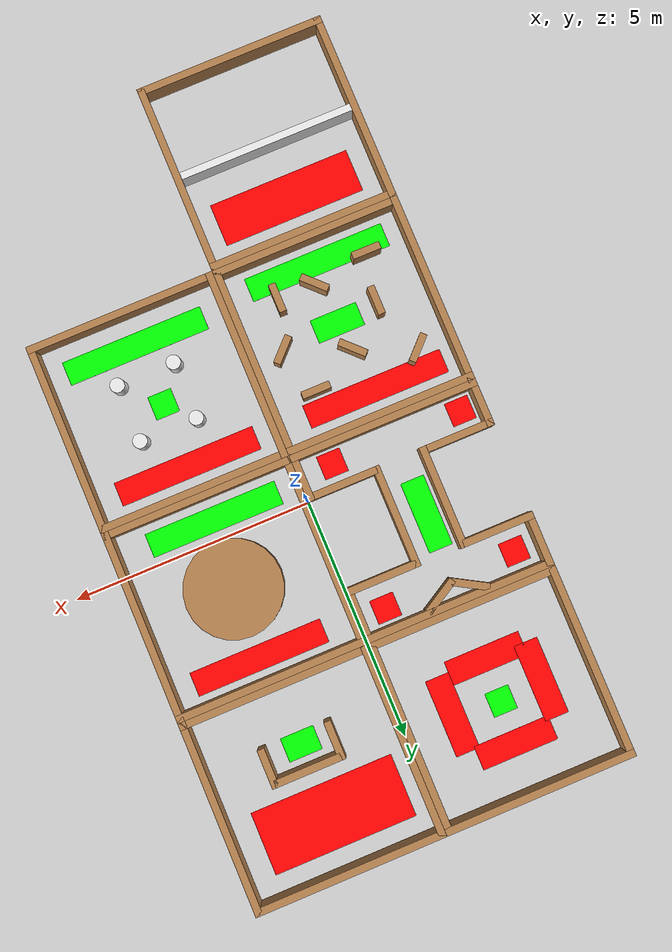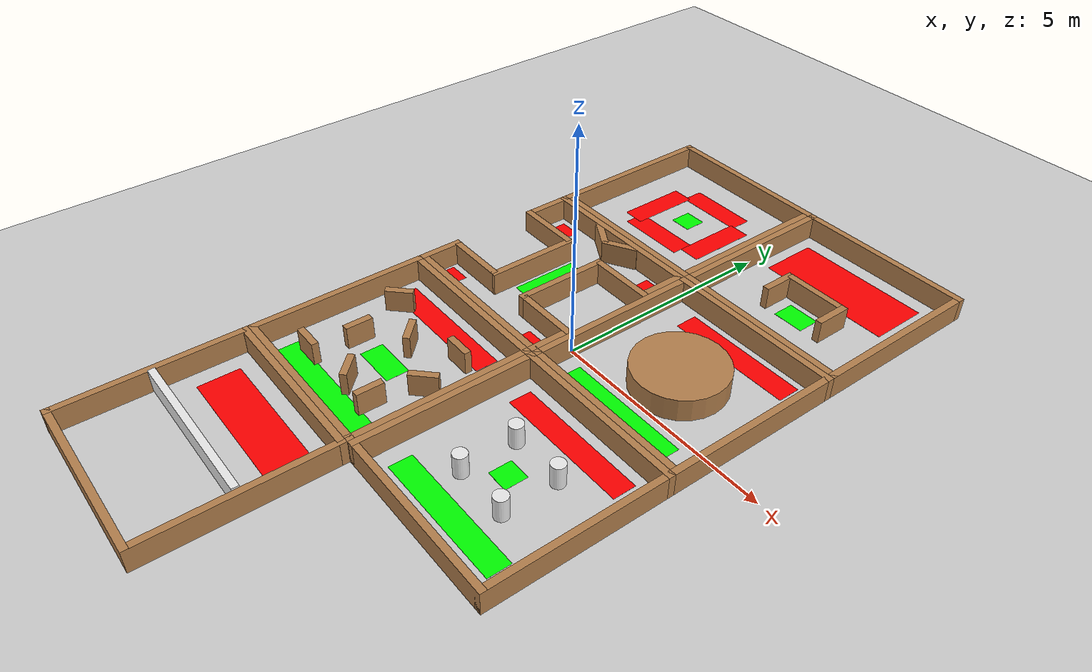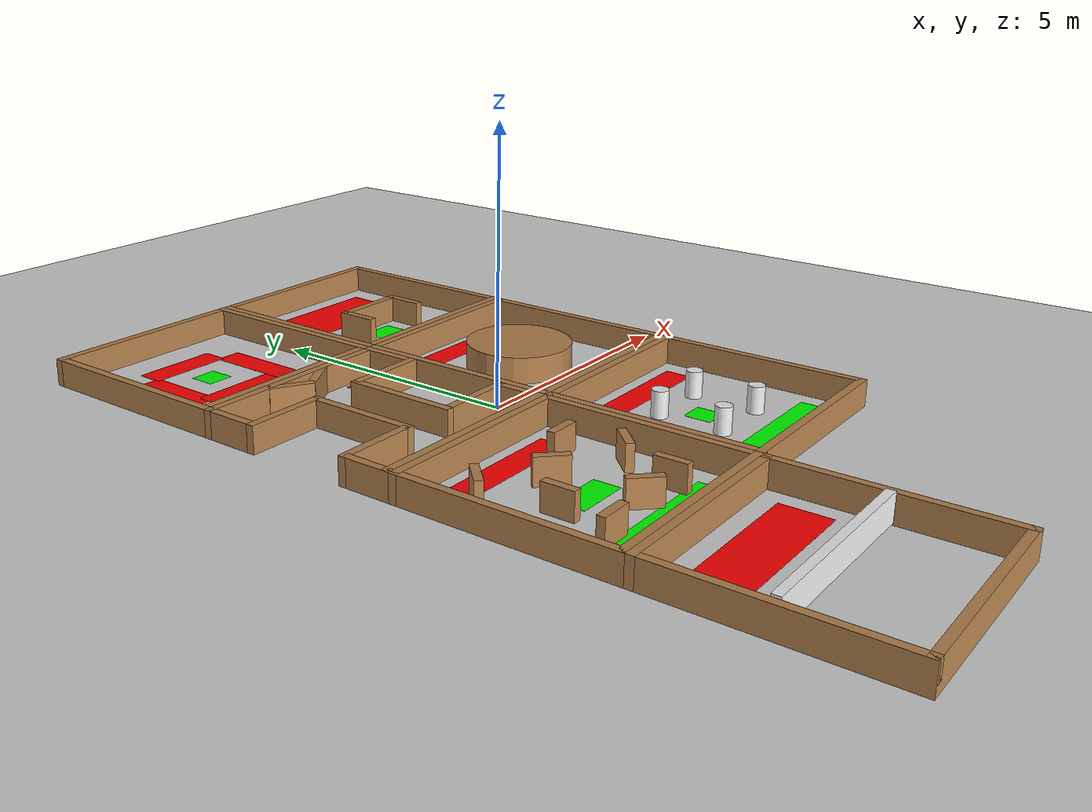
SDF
<sdf version="1.6">
 <world name="default">
  <light name="sun" type="directional">
   <pose>0 0 10 0 -0 0</pose>
   <diffuse>0.8 0.8 0.8 1</diffuse>
   <specular>0.1 0.1 0.1 1</specular>
   <attenuation>
    <range>1000</range>
    <constant>0.9</constant>
    <linear>0.01</linear>
    <quadratic>0.001</quadratic>
   </attenuation>
   <direction>-0.5 0.5 -1</direction>
  </light>
  <model name="ground_plane">
   <static>1</static>
   <link name="link">
    <collision name="collision">
     <geometry><plane><normal>0 0 1</normal><size>100 100</size></plane></geometry>
     <surface><friction><ode><mu>100</mu><mu2>50</mu2></ode></friction></surface>
    </collision>
    <visual name="visual">
     <cast_shadows>0</cast_shadows>
     <geometry><plane><normal>0 0 1</normal><size>100 100</size></plane></geometry>
     <material>
      <script><uri>file://media/materials/scripts/gazebo.material</uri><name>Gazebo/Grey</name></script>
     </material>
    </visual>
   </link>
  </model>
  <gravity>0 0 -9.8</gravity>
  <magnetic_field>6e-06 2.3e-05 -4.2e-05</magnetic_field>
  <atmosphere type="adiabatic"/>
  <physics name="default_physics" default="0" type="ode">
   <max_step_size>0.001</max_step_size>
   <real_time_factor>1</real_time_factor>
   <real_time_update_rate>1000</real_time_update_rate>
  </physics>
  <scene><ambient>0.4 0.4 0.4 1</ambient><background>0.7 0.7 0.7 1</background><shadows>1</shadows></scene>
  <spherical_coordinates>
   <surface_model>EARTH_WGS84</surface_model>
   <latitude_deg>0</latitude_deg>
   <longitude_deg>0</longitude_deg>
   <elevation>0</elevation>
   <heading_deg>0</heading_deg>
  </spherical_coordinates>
  <model name="empty_square">
   <pose>-2 5 0 0 -0 0</pose>
   <link name="Wall_0">
    <collision name="Wall_0_Collision">
     <geometry><box><size>4 0.15 0.5</size></box></geometry>
     <pose>0 0 0.25 0 -0 0</pose>
    </collision>
    <visual name="Wall_0_Visual">
     <pose>0 0 0.25 0 -0 0</pose>
     <geometry><box><size>4 0.15 0.5</size></box></geometry>
     <material>
      <script><uri>file://media/materials/scripts/gazebo.material</uri><name>Gazebo/Wood</name></script>
      <ambient>1 1 1 1</ambient>
     </material>
    </visual>
    <pose>0 1.925 0 0 -0 0</pose>
   </link>
   <link name="Wall_2">
    <collision name="Wall_2_Collision">
     <geometry><box><size>4 0.15 0.5</size></box></geometry>
     <pose>0 0 0.25 0 -0 0</pose>
    </collision>
    <visual name="Wall_2_Visual">
     <pose>0 0 0.25 0 -0 0</pose>
     <geometry><box><size>4 0.15 0.5</size></box></geometry>
     <material>
      <script><uri>file://media/materials/scripts/gazebo.material</uri><name>Gazebo/Wood</name></script>
      <ambient>1 1 1 1</ambient>
     </material>
    </visual>
    <pose>-1.925 0 0 0 0 -1.5708</pose>
   </link>
   <link name="Wall_3">
    <collision name="Wall_3_Collision">
     <geometry><box><size>4 0.15 0.5</size></box></geometry>
     <pose>0 0 0.25 0 -0 0</pose>
    </collision>
    <visual name="Wall_3_Visual">
     <pose>0 0 0.25 0 -0 0</pose>
     <geometry><box><size>4 0.15 0.5</size></box></geometry>
     <material>
      <script><uri>file://media/materials/scripts/gazebo.material</uri><name>Gazebo/Wood</name></script>
      <ambient>1 1 1 1</ambient>
     </material>
    </visual>
    <pose>0 -1.925 0 0 -0 0</pose>
   </link>
   <link name="Wall_4">
    <collision name="Wall_4_Collision">
     <geometry><box><size>4 0.15 0.5</size></box></geometry>
     <pose>0 0 0.25 0 -0 0</pose>
    </collision>
    <visual name="Wall_4_Visual">
     <pose>0 0 0.25 0 -0 0</pose>
     <geometry><box><size>4 0.15 0.5</size></box></geometry>
     <material>
      <script><uri>file://media/materials/scripts/gazebo.material</uri><name>Gazebo/Wood</name></script>
      <ambient>1 1 1 1</ambient>
     </material>
    </visual>
    <pose>1.925 0 0 0 -0 1.5708</pose>
   </link>
   <static>1</static>
  </model>
  <model name="initial_move_away">
   <pose>2 5 0 0 -0 0</pose>
   <link name="Wall_0">
    <collision name="Wall_0_Collision">
     <geometry><box><size>4 0.15 0.5</size></box></geometry>
     <pose>0 0 0.25 0 -0 0</pose>
    </collision>
    <visual name="Wall_0_Visual">
     <pose>0 0 0.25 0 -0 0</pose>
     <geometry><box><size>4 0.15 0.5</size></box></geometry>
     <material>
      <script><uri>file://media/materials/scripts/gazebo.material</uri><name>Gazebo/Wood</name></script>
      <ambient>1 1 1 1</ambient>
     </material>
    </visual>
    <pose>0 1.925 0 0 -0 0</pose>
   </link>
   <link name="Wall_2">
    <collision name="Wall_2_Collision">
     <geometry><box><size>4 0.15 0.5</size></box></geometry>
     <pose>0 0 0.25 0 -0 0</pose>
    </collision>
    <visual name="Wall_2_Visual">
     <pose>0 0 0.25 0 -0 0</pose>
     <geometry><box><size>4 0.15 0.5</size></box></geometry>
     <material>
      <script><uri>file://media/materials/scripts/gazebo.material</uri><name>Gazebo/Wood</name></script>
      <ambient>1 1 1 1</ambient>
     </material>
    </visual>
    <pose>-1.925 0 0 0 0 -1.5708</pose>
   </link>
   <link name="Wall_3">
    <collision name="Wall_3_Collision">
     <geometry><box><size>4 0.15 0.5</size></box></geometry>
     <pose>0 0 0.25 0 -0 0</pose>
    </collision>
    <visual name="Wall_3_Visual">
     <pose>0 0 0.25 0 -0 0</pose>
     <geometry><box><size>4 0.15 0.5</size></box></geometry>
     <material>
      <script><uri>file://media/materials/scripts/gazebo.material</uri><name>Gazebo/Wood</name></script>
      <ambient>1 1 1 1</ambient>
     </material>
    </visual>
    <pose>0 -1.925 0 0 -0 0</pose>
   </link>
   <link name="Wall_4">
    <collision name="Wall_4_Collision">
     <geometry><box><size>4 0.15 0.5</size></box></geometry>
     <pose>0 0 0.25 0 -0 0</pose>
    </collision>
    <visual name="Wall_4_Visual">
     <pose>0 0 0.25 0 -0 0</pose>
     <geometry><box><size>4 0.15 0.5</size></box></geometry>
     <material>
      <script><uri>file://media/materials/scripts/gazebo.material</uri><name>Gazebo/Wood</name></script>
      <ambient>1 1 1 1</ambient>
     </material>
    </visual>
    <pose>1.925 0 0 0 -0 1.5708</pose>
   </link>
   <link name="Wall_5">
    <collision name="Wall_5_Collision">
     <geometry><box><size>1.4 0.15 0.5</size></box></geometry>
     <pose>0 0 0.25 0 -0 0</pose>
    </collision>
    <visual name="Wall_5_Visual">
     <pose>0 0 0.25 0 -0 0</pose>
     <geometry><box><size>1.4 0.15 0.5</size></box></geometry>
     <material>
      <script><uri>file://media/materials/scripts/gazebo.material</uri><name>Gazebo/Wood</name></script>
      <ambient>1 1 1 1</ambient>
     </material>
    </visual>
    <pose>0 -0.2 0 0 -0 0</pose>
   </link>
   <link name="Wall_6">
    <collision name="Wall_6_Collision">
     <geometry><box><size>0.8 0.15 0.5</size></box></geometry>
     <pose>0 0 0.25 0 -0 0</pose>
    </collision>
    <visual name="Wall_6_Visual">
     <pose>0 0 0.25 0 -0 0</pose>
     <geometry><box><size>0.8 0.15 0.5</size></box></geometry>
     <material>
      <script><uri>file://media/materials/scripts/gazebo.material</uri><name>Gazebo/Wood</name></script>
      <ambient>1 1 1 1</ambient>
     </material>
    </visual>
    <pose>0.7 -0.525 0 0 -0 1.5708</pose>
   </link>
   <link name="Wall_7">
    <collision name="Wall_7_Collision">
     <geometry><box><size>0.8 0.15 0.5</size></box></geometry>
     <pose>0 0 0.25 0 -0 0</pose>
    </collision>
    <visual name="Wall_7_Visual">
     <pose>0 0 0.25 0 -0 0</pose>
     <geometry><box><size>0.8 0.15 0.5</size></box></geometry>
     <material>
      <script><uri>file://media/materials/scripts/gazebo.material</uri><name>Gazebo/Wood</name></script>
      <ambient>1 1 1 1</ambient>
     </material>
    </visual>
    <pose>-0.7 -0.525 0 0 -0 1.5708</pose>
   </link>
   <static>1</static>
  </model>
  <model name="left_right_turn">
   <pose>-2 1 0 0 -0 0</pose>
   <link name="Wall_0">
    <collision name="Wall_0_Collision">
     <geometry><box><size>4 0.15 0.5</size></box></geometry>
     <pose>0 0 0.25 0 -0 0</pose>
    </collision>
    <visual name="Wall_0_Visual">
     <pose>0 0 0.25 0 -0 0</pose>
     <geometry><box><size>4 0.15 0.5</size></box></geometry>
     <material>
      <script><uri>file://media/materials/scripts/gazebo.material</uri><name>Gazebo/Wood</name></script>
      <ambient>1 1 1 1</ambient>
     </material>
    </visual>
    <pose>0 1.925 0 0 -0 0</pose>
   </link>
   <link name="Wall_2">
    <collision name="Wall_2_Collision">
     <geometry><box><size>1 0.15 0.5</size></box></geometry>
     <pose>0 0 0.25 0 -0 0</pose>
    </collision>
    <visual name="Wall_2_Visual">
     <pose>0 0 0.25 0 -0 0</pose>
     <geometry><box><size>1 0.15 0.5</size></box></geometry>
     <material>
      <script><uri>file://media/materials/scripts/gazebo.material</uri><name>Gazebo/Wood</name></script>
      <ambient>1 1 1 1</ambient>
     </material>
    </visual>
    <pose>-1.925 1.5 0 0 0 -1.5708</pose>
   </link>
   <link name="Wall_3">
    <collision name="Wall_3_Collision">
     <geometry><box><size>4 0.15 0.5</size></box></geometry>
     <pose>0 0 0.25 0 -0 0</pose>
    </collision>
    <visual name="Wall_3_Visual">
     <pose>0 0 0.25 0 -0 0</pose>
     <geometry><box><size>4 0.15 0.5</size></box></geometry>
     <material>
      <script><uri>file://media/materials/scripts/gazebo.material</uri><name>Gazebo/Wood</name></script>
      <ambient>1 1 1 1</ambient>
     </material>
    </visual>
    <pose>0 -1.925 0 0 -0 0</pose>
   </link>
   <link name="Wall_4">
    <collision name="Wall_4_Collision">
     <geometry><box><size>1 0.15 0.5</size></box></geometry>
     <pose>0 0 0.25 0 -0 0</pose>
    </collision>
    <visual name="Wall_4_Visual">
     <pose>0 0 0.25 0 -0 0</pose>
     <geometry><box><size>1 0.15 0.5</size></box></geometry>
     <material>
      <script><uri>file://media/materials/scripts/gazebo.material</uri><name>Gazebo/Wood</name></script>
      <ambient>1 1 1 1</ambient>
     </material>
    </visual>
    <pose>1.925 1.5 0 0 -0 1.5708</pose>
   </link>
   <link name="Wall_5">
    <collision name="Wall_5_Collision">
     <geometry><box><size>1 0.15 0.5</size></box></geometry>
     <pose>0 0 0.25 0 -0 0</pose>
    </collision>
    <visual name="Wall_5_Visual">
     <pose>0 0 0.25 0 -0 0</pose>
     <geometry><box><size>1 0.15 0.5</size></box></geometry>
     <material>
      <script><uri>file://media/materials/scripts/gazebo.material</uri><name>Gazebo/Wood</name></script>
      <ambient>1 1 1 1</ambient>
     </material>
    </visual>
    <pose>-1.925 -1.5 0 0 0 -1.5708</pose>
   </link>
   <link name="Wall_6">
    <collision name="Wall_6_Collision">
     <geometry><box><size>1 0.15 0.5</size></box></geometry>
     <pose>0 0 0.25 0 -0 0</pose>
    </collision>
    <visual name="Wall_6_Visual">
     <pose>0 0 0.25 0 -0 0</pose>
     <geometry><box><size>1 0.15 0.5</size></box></geometry>
     <material>
      <script><uri>file://media/materials/scripts/gazebo.material</uri><name>Gazebo/Wood</name></script>
      <ambient>1 1 1 1</ambient>
     </material>
    </visual>
    <pose>1.925 -1.5 0 0 -0 1.5708</pose>
   </link>
   <link name="Wall_7">
    <collision name="Wall_7_Collision">
     <geometry><box><size>1.5 0.15 0.5</size></box></geometry>
     <pose>0 0 0.25 0 -0 0</pose>
    </collision>
    <visual name="Wall_7_Visual">
     <pose>0 0 0.25 0 -0 0</pose>
     <geometry><box><size>1.5 0.15 0.5</size></box></geometry>
     <material>
      <script><uri>file://media/materials/scripts/gazebo.material</uri><name>Gazebo/Wood</name></script>
      <ambient>1 1 1 1</ambient>
     </material>
    </visual>
    <pose>-1.25 0.925 0 0 -0 0</pose>
   </link>
   <link name="Wall_8">
    <collision name="Wall_8_Collision">
     <geometry><box><size>1.5 0.15 0.5</size></box></geometry>
     <pose>0 0 0.25 0 -0 0</pose>
    </collision>
    <visual name="Wall_8_Visual">
     <pose>0 0 0.25 0 -0 0</pose>
     <geometry><box><size>1.5 0.15 0.5</size></box></geometry>
     <material>
      <script><uri>file://media/materials/scripts/gazebo.material</uri><name>Gazebo/Wood</name></script>
      <ambient>1 1 1 1</ambient>
     </material>
    </visual>
    <pose>1.25 0.925 0 0 -0 0</pose>
   </link>
   <link name="Wall_9">
    <collision name="Wall_9_Collision">
     <geometry><box><size>1.5 0.15 0.5</size></box></geometry>
     <pose>0 0 0.25 0 -0 0</pose>
    </collision>
    <visual name="Wall_9_Visual">
     <pose>0 0 0.25 0 -0 0</pose>
     <geometry><box><size>1.5 0.15 0.5</size></box></geometry>
     <material>
      <script><uri>file://media/materials/scripts/gazebo.material</uri><name>Gazebo/Wood</name></script>
      <ambient>1 1 1 1</ambient>
     </material>
    </visual>
    <pose>-1.25 -1.075 0 0 -0 0</pose>
   </link>
   <link name="Wall_10">
    <collision name="Wall_10_Collision">
     <geometry><box><size>1.5 0.15 0.5</size></box></geometry>
     <pose>0 0 0.25 0 -0 0</pose>
    </collision>
    <visual name="Wall_10_Visual">
     <pose>0 0 0.25 0 -0 0</pose>
     <geometry><box><size>1.5 0.15 0.5</size></box></geometry>
     <material>
      <script><uri>file://media/materials/scripts/gazebo.material</uri><name>Gazebo/Wood</name></script>
      <ambient>1 1 1 1</ambient>
     </material>
    </visual>
    <pose>1.25 -1.075 0 0 -0 0</pose>
   </link>
   <link name="Wall_11">
    <collision name="Wall_11_Collision">
     <geometry><box><size>2.15 0.15 0.5</size></box></geometry>
     <pose>0 0 0.25 0 -0 0</pose>
    </collision>
    <visual name="Wall_11_Visual">
     <pose>0 0 0.25 0 -0 0</pose>
     <geometry><box><size>2.15 0.15 0.5</size></box></geometry>
     <material>
      <script><uri>file://media/materials/scripts/gazebo.material</uri><name>Gazebo/Wood</name></script>
      <ambient>1 1 1 1</ambient>
     </material>
    </visual>
    <pose>-0.5 -0.075 0 0 0 -1.5708</pose>
   </link>
   <link name="Wall_12">
    <collision name="Wall_12_Collision">
     <geometry><box><size>2.15 0.15 0.5</size></box></geometry>
     <pose>0 0 0.25 0 -0 0</pose>
    </collision>
    <visual name="Wall_12_Visual">
     <pose>0 0 0.25 0 -0 0</pose>
     <geometry><box><size>2.15 0.15 0.5</size></box></geometry>
     <material>
      <script><uri>file://media/materials/scripts/gazebo.material</uri><name>Gazebo/Wood</name></script>
      <ambient>1 1 1 1</ambient>
     </material>
    </visual>
    <pose>0.5 -0.075 0 0 0 -1.5708</pose>
   </link>
   <link name="Wall_13">
    <collision name="Wall_13_Collision">
     <geometry><box><size>0.8 0.15 0.5</size></box></geometry>
     <pose>0 0 0.25 0 -0 0</pose>
    </collision>
    <visual name="Wall_13_Visual">
     <pose>0 0 0.25 0 -0 0</pose>
     <geometry><box><size>0.8 0.15 0.5</size></box></geometry>
     <material>
      <script><uri>file://media/materials/scripts/gazebo.material</uri><name>Gazebo/Wood</name></script>
      <ambient>1 1 1 1</ambient>
     </material>
    </visual>
    <pose>0.31 1.7 0 0 -0 0.5236</pose>
   </link>
   <link name="Wall_14">
    <collision name="Wall_14_Collision">
     <geometry><box><size>0.8 0.15 0.5</size></box></geometry>
     <pose>0 0 0.25 0 -0 0</pose>
    </collision>
    <visual name="Wall_14_Visual">
     <pose>0 0 0.25 0 -0 0</pose>
     <geometry><box><size>0.8 0.15 0.5</size></box></geometry>
     <material>
      <script><uri>file://media/materials/scripts/gazebo.material</uri><name>Gazebo/Wood</name></script>
      <ambient>1 1 1 1</ambient>
     </material>
    </visual>
    <pose>-0.31 1.7 0 0 -0 2.6179</pose>
   </link>
   <static>1</static>
  </model>
  <model name="moving_obstacles">
   <pose>2 -3 0 0 -0 0</pose>
   <link name="Wall_0">
    <collision name="Wall_0_Collision">
     <geometry><box><size>4 0.15 0.5</size></box></geometry>
     <pose>0 0 0.25 0 -0 0</pose>
    </collision>
    <visual name="Wall_0_Visual">
     <pose>0 0 0.25 0 -0 0</pose>
     <geometry><box><size>4 0.15 0.5</size></box></geometry>
     <material>
      <script><uri>file://media/materials/scripts/gazebo.material</uri><name>Gazebo/Wood</name></script>
      <ambient>1 1 1 1</ambient>
     </material>
    </visual>
    <pose>0 1.925 0 0 -0 0</pose>
   </link>
   <link name="Wall_2">
    <collision name="Wall_2_Collision">
     <geometry><box><size>4 0.15 0.5</size></box></geometry>
     <pose>0 0 0.25 0 -0 0</pose>
    </collision>
    <visual name="Wall_2_Visual">
     <pose>0 0 0.25 0 -0 0</pose>
     <geometry><box><size>4 0.15 0.5</size></box></geometry>
     <material>
      <script><uri>file://media/materials/scripts/gazebo.material</uri><name>Gazebo/Wood</name></script>
      <ambient>1 1 1 1</ambient>
     </material>
    </visual>
    <pose>-1.925 0 0 0 0 -1.5708</pose>
   </link>
   <link name="Wall_3">
    <collision name="Wall_3_Collision">
     <geometry><box><size>4 0.15 0.5</size></box></geometry>
     <pose>0 0 0.25 0 -0 0</pose>
    </collision>
    <visual name="Wall_3_Visual">
     <pose>0 0 0.25 0 -0 0</pose>
     <geometry><box><size>4 0.15 0.5</size></box></geometry>
     <material>
      <script><uri>file://media/materials/scripts/gazebo.material</uri><name>Gazebo/Wood</name></script>
      <ambient>1 1 1 1</ambient>
     </material>
    </visual>
    <pose>0 -1.925 0 0 -0 0</pose>
   </link>
   <link name="Wall_4">
    <collision name="Wall_4_Collision">
     <geometry><box><size>4 0.15 0.5</size></box></geometry>
     <pose>0 0 0.25 0 -0 0</pose>
    </collision>
    <visual name="Wall_4_Visual">
     <pose>0 0 0.25 0 -0 0</pose>
     <geometry><box><size>4 0.15 0.5</size></box></geometry>
     <material>
      <script><uri>file://media/materials/scripts/gazebo.material</uri><name>Gazebo/Wood</name></script>
      <ambient>1 1 1 1</ambient>
     </material>
    </visual>
    <pose>1.925 0 0 0 -0 1.5708</pose>
   </link>
   <static>1</static>
  </model>
  <model name="moving_obstacles_round">
   <pose>2 -3 0 0 1e-06 0</pose>
   <link name="obstacle">
    <collision name="obstacle_1">
     <pose>-0.6 -0.6 0.25 0 -0 0</pose>
     <geometry><cylinder><radius>0.15</radius><length>0.5</length></cylinder></geometry>
    </collision>
    <visual name="obstacle_1">
     <pose>-0.6 -0.6 0.25 0 -0 0</pose>
     <geometry><cylinder><radius>0.15</radius><length>0.5</length></cylinder></geometry>
     <material>
      <script><uri>file://media/materials/scripts/gazebo.material</uri><name>Gazebo/White</name></script>
     </material>
    </visual>
    <collision name="obstacle_2">
     <pose>-0.6 0.6 0.25 0 -0 0</pose>
     <geometry><cylinder><radius>0.15</radius><length>0.5</length></cylinder></geometry>
    </collision>
    <visual name="obstacle_2">
     <pose>-0.6 0.6 0.25 0 -0 0</pose>
     <geometry><cylinder><radius>0.15</radius><length>0.5</length></cylinder></geometry>
     <material>
      <script><uri>file://media/materials/scripts/gazebo.material</uri><name>Gazebo/White</name></script>
     </material>
    </visual>
    <collision name="obstacle_3">
     <pose>0.6 -0.6 0.25 0 -0 0</pose>
     <geometry><cylinder><radius>0.15</radius><length>0.5</length></cylinder></geometry>
    </collision>
    <visual name="obstacle_3">
     <pose>0.6 -0.6 0.25 0 -0 0</pose>
     <geometry><cylinder><radius>0.15</radius><length>0.5</length></cylinder></geometry>
     <material>
      <script><uri>file://media/materials/scripts/gazebo.material</uri><name>Gazebo/White</name></script>
     </material>
    </visual>
    <collision name="obstacle_4">
     <pose>0.6 0.6 0.25 0 -0 0</pose>
     <geometry><cylinder><radius>0.15</radius><length>0.5</length></cylinder></geometry>
    </collision>
    <visual name="obstacle_4">
     <pose>0.6 0.6 0.25 0 -0 0</pose>
     <geometry><cylinder><radius>0.15</radius><length>0.5</length></cylinder></geometry>
     <material>
      <script><uri>file://media/materials/scripts/gazebo.material</uri><name>Gazebo/White</name></script>
     </material>
    </visual>
    <inertial>
     <inertia><ixx>1</ixx><ixy>0</ixy><ixz>0</ixz><iyy>1</iyy><iyz>0</iyz><izz>1</izz></inertia>
     <mass>1</mass>
    </inertial>
   </link>
  </model>
  <model name="gate_env">
   <pose>-2 -7 0 0 -0 0</pose>
   <link name="Wall_0">
    <collision name="Wall_0_Collision">
     <geometry><box><size>4 0.15 0.5</size></box></geometry>
     <pose>0 0 0.25 0 -0 0</pose>
    </collision>
    <visual name="Wall_0_Visual">
     <pose>0 0 0.25 0 -0 0</pose>
     <geometry><box><size>4 0.15 0.5</size></box></geometry>
     <material>
      <script><uri>file://media/materials/scripts/gazebo.material</uri><name>Gazebo/Wood</name></script>
      <ambient>1 1 1 1</ambient>
     </material>
    </visual>
    <pose>0 1.925 0 0 -0 0</pose>
   </link>
   <link name="Wall_2">
    <collision name="Wall_2_Collision">
     <geometry><box><size>4 0.15 0.5</size></box></geometry>
     <pose>0 0 0.25 0 -0 0</pose>
    </collision>
    <visual name="Wall_2_Visual">
     <pose>0 0 0.25 0 -0 0</pose>
     <geometry><box><size>4 0.15 0.5</size></box></geometry>
     <material>
      <script><uri>file://media/materials/scripts/gazebo.material</uri><name>Gazebo/Wood</name></script>
      <ambient>1 1 1 1</ambient>
     </material>
    </visual>
    <pose>-1.925 0 0 0 0 -1.5708</pose>
   </link>
   <link name="Wall_3">
    <collision name="Wall_3_Collision">
     <geometry><box><size>4 0.15 0.5</size></box></geometry>
     <pose>0 0 0.25 0 -0 0</pose>
    </collision>
    <visual name="Wall_3_Visual">
     <pose>0 0 0.25 0 -0 0</pose>
     <geometry><box><size>4 0.15 0.5</size></box></geometry>
     <material>
      <script><uri>file://media/materials/scripts/gazebo.material</uri><name>Gazebo/Wood</name></script>
      <ambient>1 1 1 1</ambient>
     </material>
    </visual>
    <pose>0 -1.925 0 0 -0 0</pose>
   </link>
   <link name="Wall_4">
    <collision name="Wall_4_Collision">
     <geometry><box><size>4 0.15 0.5</size></box></geometry>
     <pose>0 0 0.25 0 -0 0</pose>
    </collision>
    <visual name="Wall_4_Visual">
     <pose>0 0 0.25 0 -0 0</pose>
     <geometry><box><size>4 0.15 0.5</size></box></geometry>
     <material>
      <script><uri>file://media/materials/scripts/gazebo.material</uri><name>Gazebo/Wood</name></script>
      <ambient>1 1 1 1</ambient>
     </material>
    </visual>
    <pose>1.925 0 0 0 -0 1.5708</pose>
   </link>
   <static>1</static>
  </model>
  <model name="gate_moving">
   <pose>-2 -7.00196 0.28665 0.007827 -9e-06 0</pose>
   <link name="gate_1">
    <collision name="gate_1"><geometry><box><size>3.69 0.15 0.5</size></box></geometry></collision>
    <visual name="gate_1">
     <geometry><box><size>3.69 0.15 0.5</size></box></geometry>
     <material>
      <script><uri>file://media/materials/scripts/gazebo.material</uri><name>Gazebo/White</name></script>
     </material>
    </visual>
    <gravity>0</gravity>
    <inertial>
     <inertia><ixx>1</ixx><ixy>0</ixy><ixz>0</ixz><iyy>1</iyy><iyz>0</iyz><izz>1</izz></inertia>
     <mass>1</mass>
    </inertial>
   </link>
  </model>
  <model name="round_obstacle">
   <pose>2 1 0 0 -0 0</pose>
   <link name="Wall_0">
    <collision name="Wall_0_Collision">
     <geometry><box><size>4 0.15 0.5</size></box></geometry>
     <pose>0 0 0.25 0 -0 0</pose>
    </collision>
    <visual name="Wall_0_Visual">
     <pose>0 0 0.25 0 -0 0</pose>
     <geometry><box><size>4 0.15 0.5</size></box></geometry>
     <material>
      <script><uri>file://media/materials/scripts/gazebo.material</uri><name>Gazebo/Wood</name></script>
      <ambient>1 1 1 1</ambient>
     </material>
    </visual>
    <pose>0 1.925 0 0 -0 0</pose>
   </link>
   <link name="Wall_2">
    <collision name="Wall_2_Collision">
     <geometry><box><size>4 0.15 0.5</size></box></geometry>
     <pose>0 0 0.25 0 -0 0</pose>
    </collision>
    <visual name="Wall_2_Visual">
     <pose>0 0 0.25 0 -0 0</pose>
     <geometry><box><size>4 0.15 0.5</size></box></geometry>
     <material>
      <script><uri>file://media/materials/scripts/gazebo.material</uri><name>Gazebo/Wood</name></script>
      <ambient>1 1 1 1</ambient>
     </material>
    </visual>
    <pose>-1.925 0 0 0 0 -1.5708</pose>
   </link>
   <link name="Wall_3">
    <collision name="Wall_3_Collision">
     <geometry><box><size>4 0.15 0.5</size></box></geometry>
     <pose>0 0 0.25 0 -0 0</pose>
    </collision>
    <visual name="Wall_3_Visual">
     <pose>0 0 0.25 0 -0 0</pose>
     <geometry><box><size>4 0.15 0.5</size></box></geometry>
     <material>
      <script><uri>file://media/materials/scripts/gazebo.material</uri><name>Gazebo/Wood</name></script>
      <ambient>1 1 1 1</ambient>
     </material>
    </visual>
    <pose>0 -1.925 0 0 -0 0</pose>
   </link>
   <link name="Wall_4">
    <collision name="Wall_4_Collision">
     <geometry><box><size>4 0.15 0.5</size></box></geometry>
     <pose>0 0 0.25 0 -0 0</pose>
    </collision>
    <visual name="Wall_4_Visual">
     <pose>0 0 0.25 0 -0 0</pose>
     <geometry><box><size>4 0.15 0.5</size></box></geometry>
     <material>
      <script><uri>file://media/materials/scripts/gazebo.material</uri><name>Gazebo/Wood</name></script>
      <ambient>1 1 1 1</ambient>
     </material>
    </visual>
    <pose>1.925 0 0 0 -0 1.5708</pose>
   </link>
   <link name="obstacle">
    <collision name="obstacle_Collision">
     <geometry><cylinder><radius>1</radius><length>0.5</length></cylinder></geometry>
     <pose>0 0 0.25 0 -0 0</pose>
    </collision>
    <visual name="obstacle_Visual">
     <pose>0 0 0.25 0 -0 0</pose>
     <geometry><cylinder><radius>1</radius><length>0.5</length></cylinder></geometry>
     <material>
      <script><uri>file://media/materials/scripts/gazebo.material</uri><name>Gazebo/Wood</name></script>
      <ambient>1 1 1 1</ambient>
     </material>
    </visual>
    <pose>0 0 0 0 -0 1.5708</pose>
   </link>
   <static>1</static>
  </model>
  <model name="static_obstacles">
   <pose>-2 -3 0 0 -0 0</pose>
   <link name="Wall_0">
    <collision name="Wall_0_Collision">
     <geometry><box><size>4 0.15 0.5</size></box></geometry>
     <pose>0 0 0.25 0 -0 0</pose>
    </collision>
    <visual name="Wall_0_Visual">
     <pose>0 0 0.25 0 -0 0</pose>
     <geometry><box><size>4 0.15 0.5</size></box></geometry>
     <material>
      <script><uri>file://media/materials/scripts/gazebo.material</uri><name>Gazebo/Wood</name></script>
      <ambient>1 1 1 1</ambient>
     </material>
    </visual>
    <pose>0 1.925 0 0 -0 0</pose>
   </link>
   <link name="Wall_2">
    <collision name="Wall_2_Collision">
     <geometry><box><size>4 0.15 0.5</size></box></geometry>
     <pose>0 0 0.25 0 -0 0</pose>
    </collision>
    <visual name="Wall_2_Visual">
     <pose>0 0 0.25 0 -0 0</pose>
     <geometry><box><size>4 0.15 0.5</size></box></geometry>
     <material>
      <script><uri>file://media/materials/scripts/gazebo.material</uri><name>Gazebo/Wood</name></script>
      <ambient>1 1 1 1</ambient>
     </material>
    </visual>
    <pose>-1.925 0 0 0 0 -1.5708</pose>
   </link>
   <link name="Wall_3">
    <collision name="Wall_3_Collision">
     <geometry><box><size>4 0.15 0.5</size></box></geometry>
     <pose>0 0 0.25 0 -0 0</pose>
    </collision>
    <visual name="Wall_3_Visual">
     <pose>0 0 0.25 0 -0 0</pose>
     <geometry><box><size>4 0.15 0.5</size></box></geometry>
     <material>
      <script><uri>file://media/materials/scripts/gazebo.material</uri><name>Gazebo/Wood</name></script>
      <ambient>1 1 1 1</ambient>
     </material>
    </visual>
    <pose>0 -1.925 0 0 -0 0</pose>
   </link>
   <link name="Wall_4">
    <collision name="Wall_4_Collision">
     <geometry><box><size>4 0.15 0.5</size></box></geometry>
     <pose>0 0 0.25 0 -0 0</pose>
    </collision>
    <visual name="Wall_4_Visual">
     <pose>0 0 0.25 0 -0 0</pose>
     <geometry><box><size>4 0.15 0.5</size></box></geometry>
     <material>
      <script><uri>file://media/materials/scripts/gazebo.material</uri><name>Gazebo/Wood</name></script>
      <ambient>1 1 1 1</ambient>
     </material>
    </visual>
    <pose>1.925 0 0 0 -0 1.5708</pose>
   </link>
   <link name="obstacle_1">
    <collision name="obstacle_1_Collision">
     <geometry><box><size>0.6 0.15 0.5</size></box></geometry>
     <pose>0 0 0.25 0 -0 0.785</pose>
    </collision>
    <visual name="obstacle_1_Visual">
     <pose>0 0 0.25 0 -0 0.785</pose>
     <geometry><box><size>0.6 0.15 0.5</size></box></geometry>
     <material>
      <script><uri>file://media/materials/scripts/gazebo.material</uri><name>Gazebo/Wood</name></script>
      <ambient>1 1 1 1</ambient>
     </material>
    </visual>
    <pose>0 0.5 0 0 -0 1.5708</pose>
   </link>
   <link name="obstacle_2">
    <collision name="obstacle_2_Collision">
     <geometry><box><size>0.6 0.15 0.5</size></box></geometry>
     <pose>0 0 0.25 0 0 -0.785</pose>
    </collision>
    <visual name="obstacle_2_Visual">
     <pose>0 0 0.25 0 0 -0.785</pose>
     <geometry><box><size>0.6 0.15 0.5</size></box></geometry>
     <material>
      <script><uri>file://media/materials/scripts/gazebo.material</uri><name>Gazebo/Wood</name></script>
      <ambient>1 1 1 1</ambient>
     </material>
    </visual>
    <pose>-1.2 1 0 0 -0 1.5708</pose>
   </link>
   <link name="obstacle_3">
    <collision name="obstacle_3_Collision">
     <geometry><box><size>0.6 0.15 0.5</size></box></geometry>
     <pose>0 0 0.25 0 -0 0</pose>
    </collision>
    <visual name="obstacle_3_Visual">
     <pose>0 0 0.25 0 -0 0</pose>
     <geometry><box><size>0.6 0.15 0.5</size></box></geometry>
     <material>
      <script><uri>file://media/materials/scripts/gazebo.material</uri><name>Gazebo/Wood</name></script>
      <ambient>1 1 1 1</ambient>
     </material>
    </visual>
    <pose>-0.8 -0.2 0 0 -0 1.5708</pose>
   </link>
   <link name="obstacle_4">
    <collision name="obstacle_4_Collision">
     <geometry><box><size>0.6 0.15 0.5</size></box></geometry>
     <pose>0 0 0.25 0 -0 0.785</pose>
    </collision>
    <visual name="obstacle_4_Visual">
     <pose>0 0 0.25 0 -0 0.785</pose>
     <geometry><box><size>0.6 0.15 0.5</size></box></geometry>
     <material>
      <script><uri>file://media/materials/scripts/gazebo.material</uri><name>Gazebo/Wood</name></script>
      <ambient>1 1 1 1</ambient>
     </material>
    </visual>
    <pose>0.2 -1 0 0 -0 1.5708</pose>
   </link>
   <link name="obstacle_5">
    <collision name="obstacle_5_Collision">
     <geometry><box><size>0.6 0.15 0.5</size></box></geometry>
     <pose>0 0 0.25 0 -0 0</pose>
    </collision>
    <visual name="obstacle_5_Visual">
     <pose>0 0 0.25 0 -0 0</pose>
     <geometry><box><size>0.6 0.15 0.5</size></box></geometry>
     <material>
      <script><uri>file://media/materials/scripts/gazebo.material</uri><name>Gazebo/Wood</name></script>
      <ambient>1 1 1 1</ambient>
     </material>
    </visual>
    <pose>-1 -1.2 0 0 -0 0</pose>
   </link>
   <link name="obstacle_6">
    <collision name="obstacle_6_Collision">
     <geometry><box><size>0.6 0.15 0.5</size></box></geometry>
     <pose>0 0 0.25 0 -0 0</pose>
    </collision>
    <visual name="obstacle_6_Visual">
     <pose>0 0 0.25 0 -0 0</pose>
     <geometry><box><size>0.6 0.15 0.5</size></box></geometry>
     <material>
      <script><uri>file://media/materials/scripts/gazebo.material</uri><name>Gazebo/Wood</name></script>
      <ambient>1 1 1 1</ambient>
     </material>
    </visual>
    <pose>1 -1 0 0 -0 1.5708</pose>
   </link>
   <link name="obstacle_7">
    <collision name="obstacle_7_Collision">
     <geometry><box><size>0.6 0.15 0.5</size></box></geometry>
     <pose>0 0 0.25 0 -0 0</pose>
    </collision>
    <visual name="obstacle_7_Visual">
     <pose>0 0 0.25 0 -0 0</pose>
     <geometry><box><size>0.6 0.15 0.5</size></box></geometry>
     <material>
      <script><uri>file://media/materials/scripts/gazebo.material</uri><name>Gazebo/Wood</name></script>
      <ambient>1 1 1 1</ambient>
     </material>
    </visual>
    <pose>1 1 0 0 -0 0</pose>
   </link>
   <link name="obstacle_7">
    <collision name="obstacle_7_Collision">
     <geometry><box><size>0.6 0.15 0.5</size></box></geometry>
     <pose>0 0 0.25 0 -0 0</pose>
    </collision>
    <visual name="obstacle_7_Visual">
     <pose>0 0 0.25 0 -0 0</pose>
     <geometry><box><size>0.6 0.15 0.5</size></box></geometry>
     <material>
      <script><uri>file://media/materials/scripts/gazebo.material</uri><name>Gazebo/Wood</name></script>
      <ambient>1 1 1 1</ambient>
     </material>
    </visual>
    <pose>1.3 0 0 0 -0 0.785</pose>
   </link>
   <static>1</static>
  </model>
  <model name="goal_box_r">
   <pose>-1.98067 -5.92683 0 0 0 -1.5708</pose>
   <link name="goal_box">
    <gravity>0</gravity>
    <visual name="goal_box">
     <pose>0 0 0.0005 0 -0 0</pose>
     <geometry><box><size>0.9 3 0.001</size></box></geometry>
     <material>
      <script><uri>file://media/materials/scripts/gazebo.material</uri><name>Gazebo/Grey</name></script>
      <ambient>1 0 0 1</ambient>
     </material>
    </visual>
    <inertial>
     <inertia><ixx>1</ixx><ixy>0</ixy><ixz>0</ixz><iyy>1</iyy><iyz>0</iyz><izz>1</izz></inertia>
     <mass>1</mass>
    </inertial>
   </link>
   <static>0</static>
  </model>
  <model name="goal_box_g_0">
   <pose>1.93252 -2.97042 0 0 0 -1.5708</pose>
   <link name="goal_box">
    <gravity>0</gravity>
    <visual name="goal_box">
     <pose>0 0 0.0005 0 -0 0</pose>
     <geometry><box><size>0.5 0.5 0.001</size></box></geometry>
     <material>
      <script><uri>file://media/materials/scripts/gazebo.material</uri><name>Gazebo/Grey</name></script>
      <ambient>0 1 0 1</ambient>
     </material>
    </visual>
    <inertial>
     <inertia><ixx>1</ixx><ixy>0</ixy><ixz>0</ixz><iyy>1</iyy><iyz>0</iyz><izz>1</izz></inertia>
     <mass>1</mass>
    </inertial>
   </link>
   <static>0</static>
  </model>
  <model name="goal_box_g_1">
   <pose>2.00972 -4.28908 0 0 0 -1.5708</pose>
   <link name="goal_box">
    <gravity>0</gravity>
    <visual name="goal_box">
     <pose>0 0 0.0005 0 -0 0</pose>
     <geometry><box><size>0.5 3 0.001</size></box></geometry>
     <material>
      <script><uri>file://media/materials/scripts/gazebo.material</uri><name>Gazebo/Grey</name></script>
      <ambient>0 1 0 1</ambient>
     </material>
    </visual>
    <inertial>
     <inertia><ixx>1</ixx><ixy>0</ixy><ixz>0</ixz><iyy>1</iyy><iyz>0</iyz><izz>1</izz></inertia>
     <mass>1</mass>
    </inertial>
   </link>
   <static>0</static>
  </model>
  <model name="goal_box_r_0">
   <pose>1.95749 -1.62439 0 0 0 -1.5708</pose>
   <link name="goal_box">
    <gravity>0</gravity>
    <visual name="goal_box">
     <pose>0 0 0.0005 0 -0 0</pose>
     <geometry><box><size>0.5 3 0.001</size></box></geometry>
     <material>
      <script><uri>file://media/materials/scripts/gazebo.material</uri><name>Gazebo/Grey</name></script>
      <ambient>1 0 0 1</ambient>
     </material>
    </visual>
    <inertial>
     <inertia><ixx>1</ixx><ixy>0</ixy><ixz>0</ixz><iyy>1</iyy><iyz>0</iyz><izz>1</izz></inertia>
     <mass>1</mass>
    </inertial>
   </link>
   <static>0</static>
  </model>
  <model name="goal_box_g_2">
   <pose>-1.94632 -3.15156 0 0 0 -1.5708</pose>
   <link name="goal_box">
    <gravity>0</gravity>
    <visual name="goal_box">
     <pose>0 0 0.0005 0 -0 0</pose>
     <geometry><box><size>0.5 1 0.001</size></box></geometry>
     <material>
      <script><uri>file://media/materials/scripts/gazebo.material</uri><name>Gazebo/Grey</name></script>
      <ambient>0 1 0 1</ambient>
     </material>
    </visual>
    <inertial>
     <inertia><ixx>1</ixx><ixy>0</ixy><ixz>0</ixz><iyy>1</iyy><iyz>0</iyz><izz>1</izz></inertia>
     <mass>1</mass>
    </inertial>
   </link>
   <static>0</static>
  </model>
  <model name="goal_box_g_3">
   <pose>-2.04163 -4.45315 0 0 0 -1.5708</pose>
   <link name="goal_box">
    <gravity>0</gravity>
    <visual name="goal_box">
     <pose>0 0 0.0005 0 -0 0</pose>
     <geometry><box><size>0.5 3 0.001</size></box></geometry>
     <material>
      <script><uri>file://media/materials/scripts/gazebo.material</uri><name>Gazebo/Grey</name></script>
      <ambient>0 1 0 1</ambient>
     </material>
    </visual>
    <inertial>
     <inertia><ixx>1</ixx><ixy>0</ixy><ixz>0</ixz><iyy>1</iyy><iyz>0</iyz><izz>1</izz></inertia>
     <mass>1</mass>
    </inertial>
   </link>
   <static>0</static>
  </model>
  <model name="goal_box_r_1">
   <pose>-2.13951 -1.61286 0 0 0 -1.5708</pose>
   <link name="goal_box">
    <gravity>0</gravity>
    <visual name="goal_box">
     <pose>0 0 0.0005 0 -0 0</pose>
     <geometry><box><size>0.5 3 0.001</size></box></geometry>
     <material>
      <script><uri>file://media/materials/scripts/gazebo.material</uri><name>Gazebo/Grey</name></script>
      <ambient>1 0 0 1</ambient>
     </material>
    </visual>
    <inertial>
     <inertia><ixx>1</ixx><ixy>0</ixy><ixz>0</ixz><iyy>1</iyy><iyz>0</iyz><izz>1</izz></inertia>
     <mass>1</mass>
    </inertial>
   </link>
   <static>0</static>
  </model>
  <model name="goal_box_g_4">
   <pose>1.87007 -0.432188 0 0 0 -1.5708</pose>
   <link name="goal_box">
    <gravity>0</gravity>
    <visual name="goal_box">
     <pose>0 0 0.0005 0 -0 0</pose>
     <geometry><box><size>0.5 2.8 0.001</size></box></geometry>
     <material>
      <script><uri>file://media/materials/scripts/gazebo.material</uri><name>Gazebo/Grey</name></script>
      <ambient>0 1 0 1</ambient>
     </material>
    </visual>
    <inertial>
     <inertia><ixx>1</ixx><ixy>0</ixy><ixz>0</ixz><iyy>1</iyy><iyz>0</iyz><izz>1</izz></inertia>
     <mass>1</mass>
    </inertial>
   </link>
   <static>0</static>
  </model>
  <model name="goal_box_r_2">
   <pose>2.08172 2.4608 0 0 0 -1.5708</pose>
   <link name="goal_box">
    <gravity>0</gravity>
    <visual name="goal_box">
     <pose>0 0 0.0005 0 -0 0</pose>
     <geometry><box><size>0.5 2.8 0.001</size></box></geometry>
     <material>
      <script><uri>file://media/materials/scripts/gazebo.material</uri><name>Gazebo/Grey</name></script>
      <ambient>1 0 0 1</ambient>
     </material>
    </visual>
    <inertial>
     <inertia><ixx>1</ixx><ixy>0</ixy><ixz>0</ixz><iyy>1</iyy><iyz>0</iyz><izz>1</izz></inertia>
     <mass>1</mass>
    </inertial>
   </link>
   <static>0</static>
  </model>
  <model name="goal_box_g_5">
   <pose>-2.10206 1.10946 0 0 0 -1.5708</pose>
   <link name="goal_box">
    <gravity>0</gravity>
    <visual name="goal_box">
     <pose>0 0 0.0005 0 -0 0</pose>
     <geometry><box><size>1.5 0.5 0.001</size></box></geometry>
     <material>
      <script><uri>file://media/materials/scripts/gazebo.material</uri><name>Gazebo/Grey</name></script>
      <ambient>0 1 0 1</ambient>
     </material>
    </visual>
    <inertial>
     <inertia><ixx>1</ixx><ixy>0</ixy><ixz>0</ixz><iyy>1</iyy><iyz>0</iyz><izz>1</izz></inertia>
     <mass>1</mass>
    </inertial>
   </link>
   <static>0</static>
  </model>
  <model name="goal_box_r_3">
   <pose>-0.617234 2.52857 0 0 0 -1.5708</pose>
   <link name="goal_box">
    <gravity>0</gravity>
    <visual name="goal_box">
     <pose>0 0 0.0005 0 -0 0</pose>
     <geometry><box><size>0.5 0.5 0.001</size></box></geometry>
     <material>
      <script><uri>file://media/materials/scripts/gazebo.material</uri><name>Gazebo/Grey</name></script>
      <ambient>1 0 0 1</ambient>
     </material>
    </visual>
    <inertial>
     <inertia><ixx>1</ixx><ixy>0</ixy><ixz>0</ixz><iyy>1</iyy><iyz>0</iyz><izz>1</izz></inertia>
     <mass>1</mass>
    </inertial>
   </link>
   <static>0</static>
  </model>
  <model name="goal_box_r_4">
   <pose>-0.746971 -0.545008 0 0 0 -1.5708</pose>
   <link name="goal_box">
    <gravity>0</gravity>
    <visual name="goal_box">
     <pose>0 0 0.0005 0 -0 0</pose>
     <geometry><box><size>0.5 0.5 0.001</size></box></geometry>
     <material>
      <script><uri>file://media/materials/scripts/gazebo.material</uri><name>Gazebo/Grey</name></script>
      <ambient>1 0 0 1</ambient>
     </material>
    </visual>
    <inertial>
     <inertia><ixx>1</ixx><ixy>0</ixy><ixz>0</ixz><iyy>1</iyy><iyz>0</iyz><izz>1</izz></inertia>
     <mass>1</mass>
    </inertial>
   </link>
   <static>0</static>
  </model>
  <model name="goal_box_r_5">
   <pose>-3.54244 -0.538536 0 0 0 -1.5708</pose>
   <link name="goal_box">
    <gravity>0</gravity>
    <visual name="goal_box">
     <pose>0 0 0.0005 0 -0 0</pose>
     <geometry><box><size>0.5 0.5 0.001</size></box></geometry>
     <material>
      <script><uri>file://media/materials/scripts/gazebo.material</uri><name>Gazebo/Grey</name></script>
      <ambient>1 0 0 1</ambient>
     </material>
    </visual>
    <inertial>
     <inertia><ixx>1</ixx><ixy>0</ixy><ixz>0</ixz><iyy>1</iyy><iyz>0</iyz><izz>1</izz></inertia>
     <mass>1</mass>
    </inertial>
   </link>
   <static>0</static>
  </model>
  <model name="goal_box_r_6">
   <pose>-3.4353 2.47447 0 0 0 -1.5708</pose>
   <link name="goal_box">
    <gravity>0</gravity>
    <visual name="goal_box">
     <pose>0 0 0.0005 0 -0 0</pose>
     <geometry><box><size>0.5 0.5 0.001</size></box></geometry>
     <material>
      <script><uri>file://media/materials/scripts/gazebo.material</uri><name>Gazebo/Grey</name></script>
      <ambient>1 0 0 1</ambient>
     </material>
    </visual>
    <inertial>
     <inertia><ixx>1</ixx><ixy>0</ixy><ixz>0</ixz><iyy>1</iyy><iyz>0</iyz><izz>1</izz></inertia>
     <mass>1</mass>
    </inertial>
   </link>
   <static>0</static>
  </model>
  <model name="goal_box_g_6">
   <pose>-2.02215 5.10248 0 0 0 -1.5708</pose>
   <link name="goal_box">
    <gravity>0</gravity>
    <visual name="goal_box">
     <pose>0 0 0.0005 0 -0 0</pose>
     <geometry><box><size>0.5 0.5 0.001</size></box></geometry>
     <material>
      <script><uri>file://media/materials/scripts/gazebo.material</uri><name>Gazebo/Grey</name></script>
      <ambient>0 1 0 1</ambient>
     </material>
    </visual>
    <inertial>
     <inertia><ixx>1</ixx><ixy>0</ixy><ixz>0</ixz><iyy>1</iyy><iyz>0</iyz><izz>1</izz></inertia>
     <mass>1</mass>
    </inertial>
   </link>
   <static>0</static>
  </model>
  <model name="goal_box_r_7">
   <pose>-2.92714 5.01248 0 0 0 -1.5708</pose>
   <link name="goal_box">
    <gravity>0</gravity>
    <visual name="goal_box">
     <pose>0 0 0.0005 0 -0 0</pose>
     <geometry><box><size>1.6 0.5 0.001</size></box></geometry>
     <material>
      <script><uri>file://media/materials/scripts/gazebo.material</uri><name>Gazebo/Grey</name></script>
      <ambient>1 0 0 1</ambient>
     </material>
    </visual>
    <inertial>
     <inertia><ixx>1</ixx><ixy>0</ixy><ixz>0</ixz><iyy>1</iyy><iyz>0</iyz><izz>1</izz></inertia>
     <mass>1</mass>
    </inertial>
   </link>
   <static>0</static>
  </model>
  <model name="goal_box_r_8">
   <pose>-1.02481 4.97683 0 0 0 -1.5708</pose>
   <link name="goal_box">
    <gravity>0</gravity>
    <visual name="goal_box">
     <pose>0 0 0.0005 0 -0 0</pose>
     <geometry><box><size>1.6 0.5 0.001</size></box></geometry>
     <material>
      <script><uri>file://media/materials/scripts/gazebo.material</uri><name>Gazebo/Grey</name></script>
      <ambient>1 0 0 1</ambient>
     </material>
    </visual>
    <inertial>
     <inertia><ixx>1</ixx><ixy>0</ixy><ixz>0</ixz><iyy>1</iyy><iyz>0</iyz><izz>1</izz></inertia>
     <mass>1</mass>
    </inertial>
   </link>
   <static>0</static>
  </model>
  <model name="goal_box_r_9">
   <pose>-1.97024 5.96734 0 0 0 -1.5708</pose>
   <link name="goal_box">
    <gravity>0</gravity>
    <visual name="goal_box">
     <pose>0 0 0.0005 0 -0 0</pose>
     <geometry><box><size>0.5 1.6 0.001</size></box></geometry>
     <material>
      <script><uri>file://media/materials/scripts/gazebo.material</uri><name>Gazebo/Grey</name></script>
      <ambient>1 0 0 1</ambient>
     </material>
    </visual>
    <inertial>
     <inertia><ixx>1</ixx><ixy>0</ixy><ixz>0</ixz><iyy>1</iyy><iyz>0</iyz><izz>1</izz></inertia>
     <mass>1</mass>
    </inertial>
   </link>
   <static>0</static>
  </model>
  <model name="goal_box_r_10">
   <pose>-2.07362 4.21098 0 0 0 -1.5708</pose>
   <link name="goal_box">
    <gravity>0</gravity>
    <visual name="goal_box">
     <pose>0 0 0.0005 0 -0 0</pose>
     <geometry><box><size>0.5 1.6 0.001</size></box></geometry>
     <material>
      <script><uri>file://media/materials/scripts/gazebo.material</uri><name>Gazebo/Grey</name></script>
      <ambient>1 0 0 1</ambient>
     </material>
    </visual>
    <inertial>
     <inertia><ixx>1</ixx><ixy>0</ixy><ixz>0</ixz><iyy>1</iyy><iyz>0</iyz><izz>1</izz></inertia>
     <mass>1</mass>
    </inertial>
   </link>
   <static>0</static>
  </model>
  <model name="goal_box_r_11">
   <pose>1.90429 5.86439 0 0 0 -1.5708</pose>
   <link name="goal_box">
    <gravity>0</gravity>
    <visual name="goal_box">
     <pose>0 0 0.0005 0 -0 0</pose>
     <geometry><box><size>1.3 3 0.001</size></box></geometry>
     <material>
      <script><uri>file://media/materials/scripts/gazebo.material</uri><name>Gazebo/Grey</name></script>
      <ambient>1 0 0 1</ambient>
     </material>
    </visual>
    <inertial>
     <inertia><ixx>1</ixx><ixy>0</ixy><ixz>0</ixz><iyy>1</iyy><iyz>0</iyz><izz>1</izz></inertia>
     <mass>1</mass>
    </inertial>
   </link>
   <static>0</static>
  </model>
  <model name="goal_box_g_7">
   <pose>1.96343 4.34726 0 0 0 -1.5708</pose>
   <link name="goal_box">
    <gravity>0</gravity>
    <visual name="goal_box">
     <pose>0 0 0.0005 0 -0 0</pose>
     <geometry><box><size>0.5 0.7 0.001</size></box></geometry>
     <material>
      <script><uri>file://media/materials/scripts/gazebo.material</uri><name>Gazebo/Grey</name></script>
      <ambient>0 1 0 1</ambient>
     </material>
    </visual>
    <inertial>
     <inertia><ixx>1</ixx><ixy>0</ixy><ixz>0</ixz><iyy>1</iyy><iyz>0</iyz><izz>1</izz></inertia>
     <mass>1</mass>
    </inertial>
   </link>
   <static>0</static>
  </model>
 </world>
</sdf>
